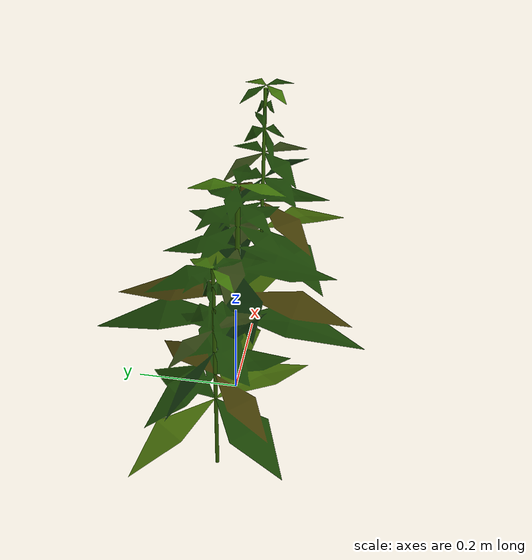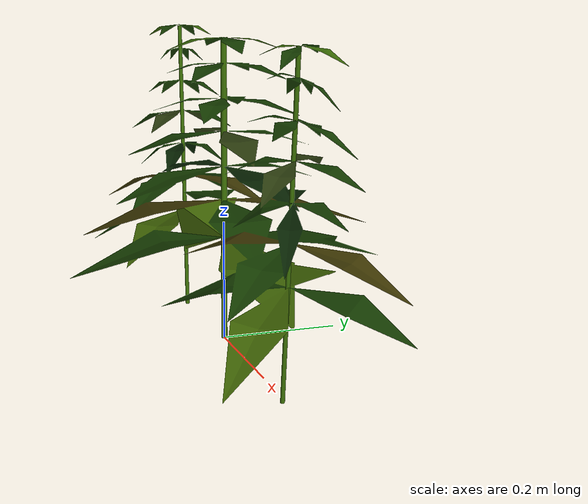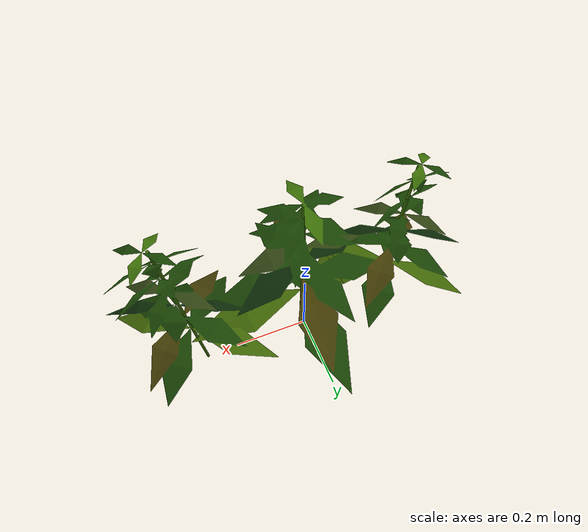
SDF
<?xml version="1.0"?>
<sdf version="1.5">
  <model name="tea_plants">
    <link name="link">
      <visual name="visual">
        <cast_shadows>false</cast_shadows>
        <geometry>
          <mesh>
            <uri>model://tea_plants/meshes/tea_plants.dae</uri>
          </mesh>
        </geometry>
      </visual>
    </link>
  </model>
</sdf>
